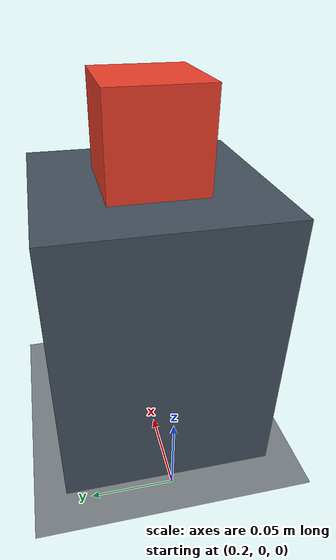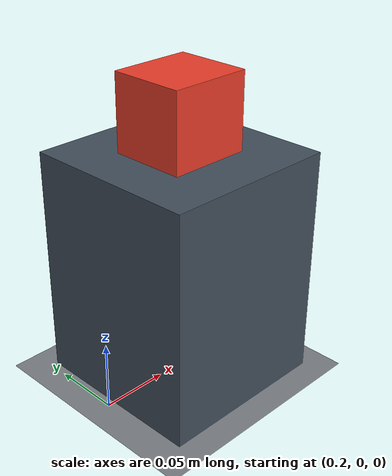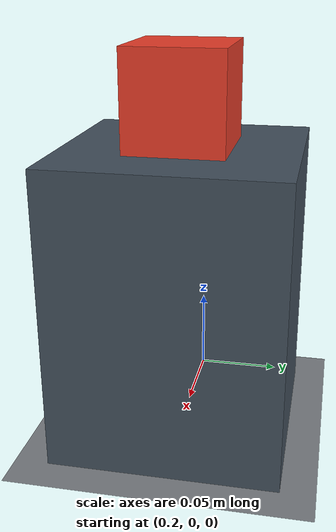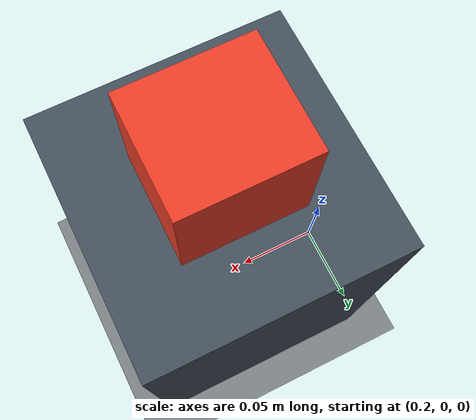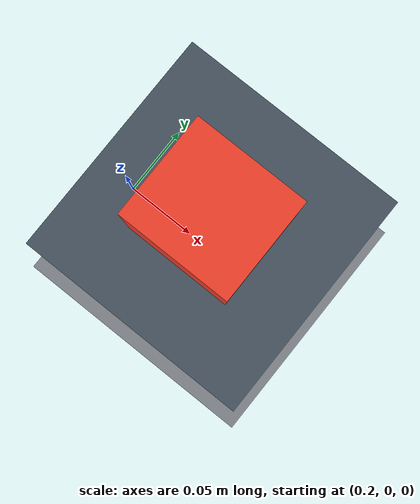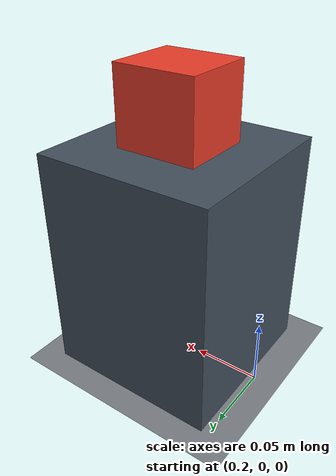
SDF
<?xml version="1.0"?>
<sdf version="1.8">
  <world name="default">
    <gravity>0 0 -9.8</gravity>
    <physics name="rl_physics" type="ode">
      <max_step_size>0.001</max_step_size>
      <real_time_factor>1.0</real_time_factor>
      <real_time_update_rate>1000</real_time_update_rate>
    </physics>

    <plugin filename="ignition-gazebo-physics-system"
            name="gz::sim::systems::Physics"/>
    <plugin filename="ignition-gazebo-user-commands-system"
            name="gz::sim::systems::UserCommands"/>
    <plugin filename="ignition-gazebo-scene-broadcaster-system"
            name="gz::sim::systems::SceneBroadcaster"/>
    <plugin filename="ignition-gazebo-sensors-system"
            name="gz::sim::systems::Sensors">
      <render_engine>ogre2</render_engine>
    </plugin>

    <light name="sun" type="directional">
      <pose>0 0 8 0 0 0</pose>
      <cast_shadows>true</cast_shadows>
      <intensity>0.9</intensity>
      <direction>-0.4 0.3 -1.0</direction>
      <diffuse>0.85 0.85 0.82 1</diffuse>
      <specular>0.15 0.15 0.15 1</specular>
    </light>

    <model name="ground_plane">
      <static>true</static>
      <link name="ground_link">
        <collision name="ground_collision">
          <geometry>
            <plane>
              <normal>0 0 1</normal>
              <size>8 8</size>
            </plane>
          </geometry>
        </collision>
        <visual name="ground_visual">
          <cast_shadows>false</cast_shadows>
          <geometry>
            <plane>
              <normal>0 0 1</normal>
              <size>8 8</size>
            </plane>
          </geometry>
          <material>
            <ambient>0.48 0.50 0.52 1</ambient>
            <diffuse>0.48 0.50 0.52 1</diffuse>
          </material>
        </visual>
      </link>
    </model>

    <!-- 13 x 13 x 17 cm pickup tower. -->
    <model name="pickup_tower">
      <static>true</static>
      <pose>0.27 0 0.085 0 0 0</pose>
      <link name="tower_link">
        <collision name="tower_collision">
          <geometry>
            <box><size>0.13 0.13 0.17</size></box>
          </geometry>
        </collision>
        <visual name="tower_visual">
          <geometry>
            <box><size>0.13 0.13 0.17</size></box>
          </geometry>
          <material>
            <ambient>0.20 0.24 0.28 1</ambient>
            <diffuse>0.26 0.31 0.36 1</diffuse>
            <specular>0.10 0.10 0.10 1</specular>
          </material>
        </visual>
      </link>
    </model>

    <!-- 6 x 5.5 x 5.5 cm delivery box centered on the tower. -->
    <model name="delivery_box">
      <static>false</static>
      <pose>0.27 0 0.1975 0 0 0</pose>
      <link name="box_link">
        <inertial>
          <mass>0.05</mass>
          <inertia>
            <ixx>0.0000252</ixx>
            <iyy>0.0000276</iyy>
            <izz>0.0000276</izz>
            <ixy>0</ixy><ixz>0</ixz><iyz>0</iyz>
          </inertia>
        </inertial>
        <collision name="box_collision">
          <geometry>
            <box><size>0.06 0.055 0.055</size></box>
          </geometry>
          <surface>
            <friction>
              <ode><mu>2.0</mu><mu2>2.0</mu2></ode>
            </friction>
            <contact>
              <ode><kp>1000000</kp><kd>10</kd></ode>
            </contact>
          </surface>
        </collision>
        <visual name="box_visual">
          <geometry>
            <box><size>0.06 0.055 0.055</size></box>
          </geometry>
          <material>
            <ambient>0.82 0.18 0.12 1</ambient>
            <diffuse>0.92 0.24 0.16 1</diffuse>
            <specular>0.18 0.18 0.18 1</specular>
          </material>
        </visual>
      </link>
    </model>

    <scene>
      <ambient>0.45 0.45 0.45 1</ambient>
      <background>0.72 0.76 0.80 1</background>
      <shadows>true</shadows>
    </scene>
  </world>
</sdf>
